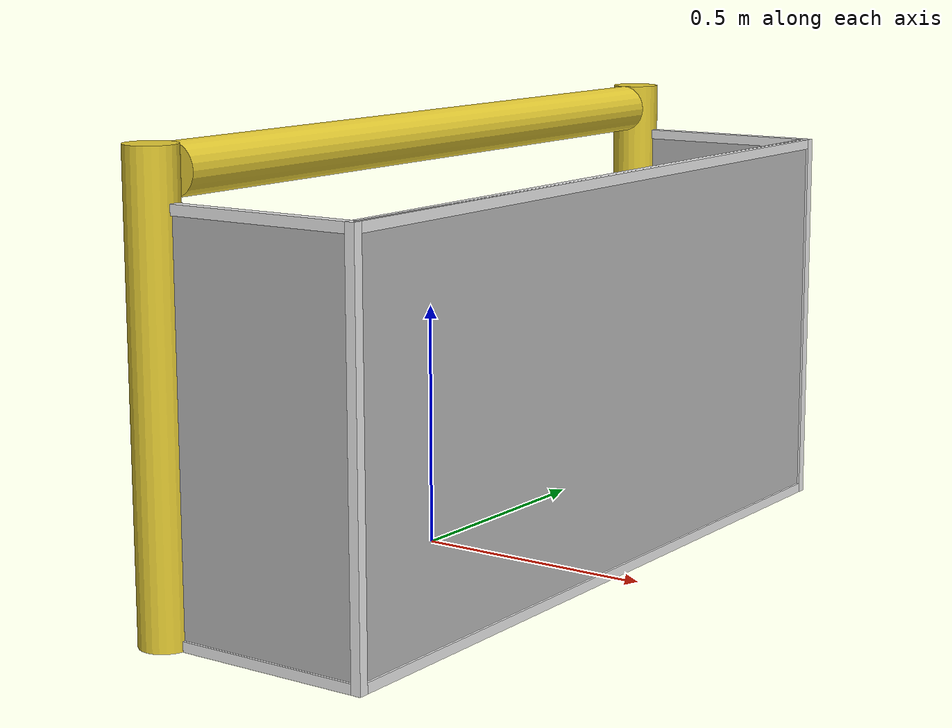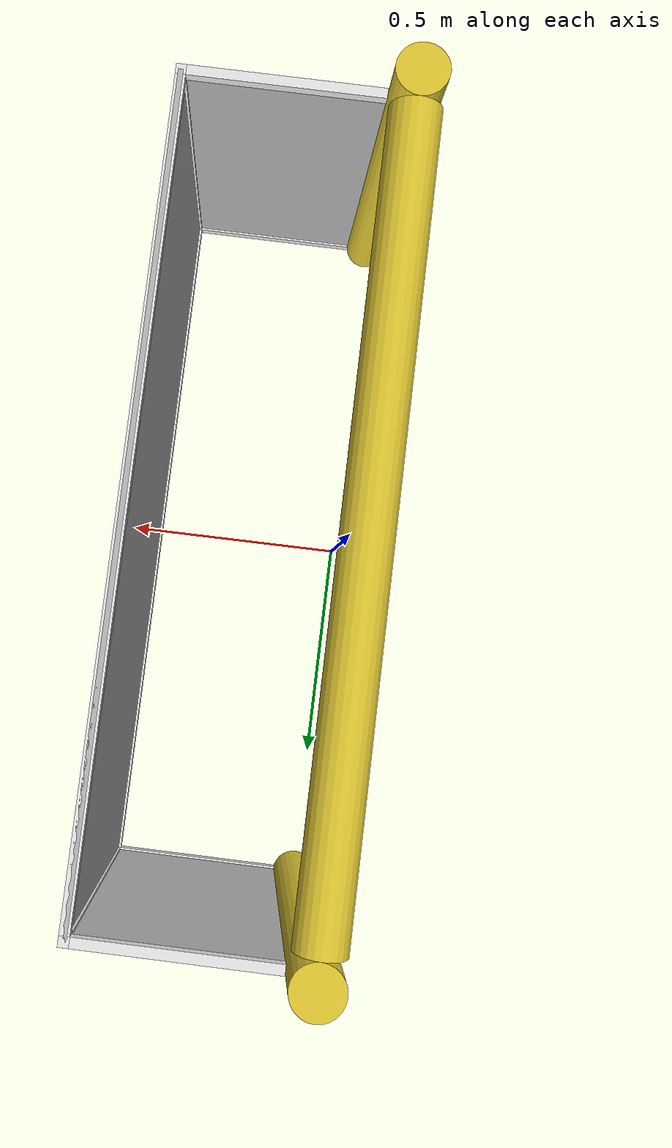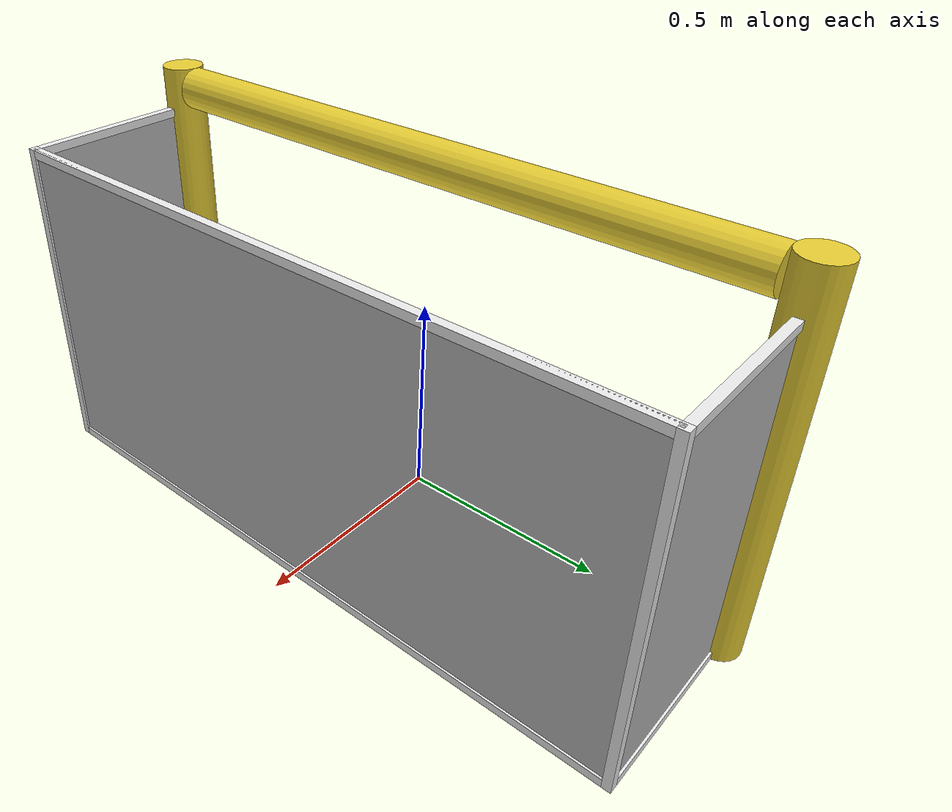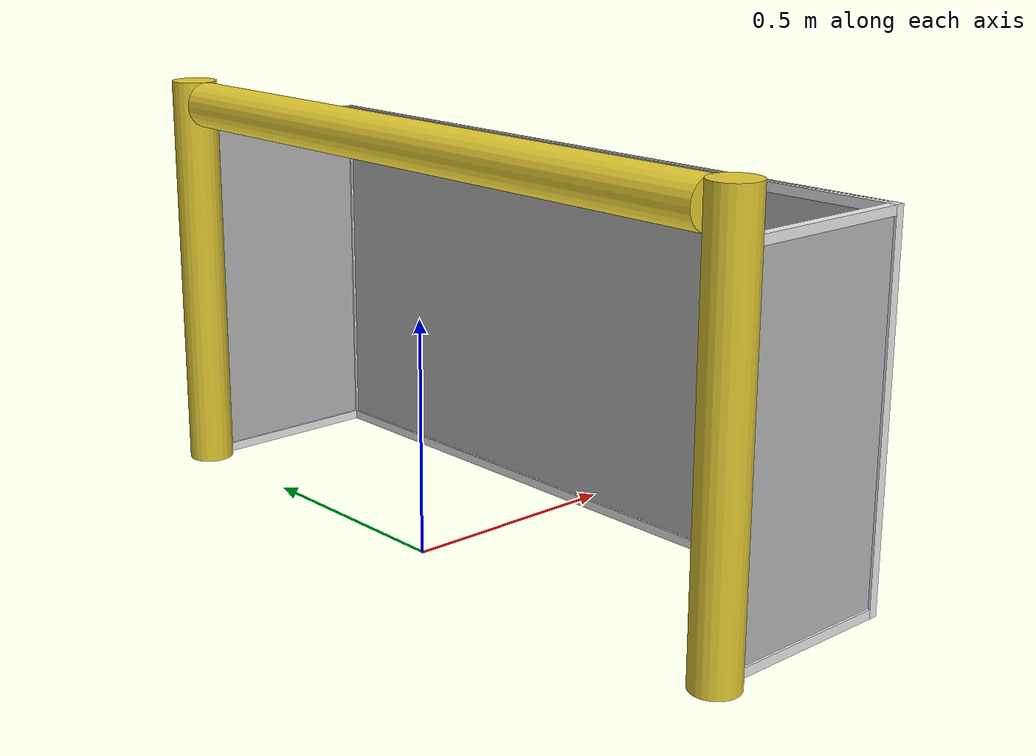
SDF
<?xml version="1.0" ?>
<sdf version="1.4">
  <model name="RoboCup 2014 SPL Goal">
    <static>true</static>

    <link name="left_post">
      <pose>0 0.8 0.45 0 0 0</pose>
      <collision name="collision">
        <geometry>
          <cylinder>
            <radius>0.05</radius>
            <length>0.9</length>
          </cylinder>
        </geometry>
      </collision>
      <visual name="visual">
        <geometry>
          <cylinder>
            <radius>0.05</radius>
            <length>0.9</length>
          </cylinder>
        </geometry>
        <material>
          <script>
            <uri>file://media/materials/scripts/gazebo.material</uri>
            <name>Gazebo/ZincYellow</name>
          </script>
        </material>
      </visual>
    </link>

    <link name="left_support_horiz_lower">
      <pose>0.24 0.8 0.01 0 0 0</pose>
      <collision name="collision">
        <geometry>
          <box>
            <size>0.38 0.02 0.02</size>
          </box>
        </geometry>
      </collision>
      <visual name="visual">
        <geometry>
          <box>
            <size>0.38 0.02 0.02</size>
          </box>
        </geometry>
        <material>
          <script>
            <uri>file://media/materials/scripts/gazebo.material</uri>
            <name>Gazebo/White</name>
          </script>
        </material>
      </visual>
    </link>

    <link name="left_support_horiz_upper">
      <pose>0.24 0.8 0.79 0 0 0</pose>
      <collision name="collision">
        <geometry>
          <box>
            <size>0.38 0.02 0.02</size>
          </box>
        </geometry>
      </collision>
      <visual name="visual">
        <geometry>
          <box>
            <size>0.38 0.02 0.02</size>
          </box>
        </geometry>
        <material>
          <script>
            <uri>file://media/materials/scripts/gazebo.material</uri>
            <name>Gazebo/White</name>
          </script>
        </material>
      </visual>
    </link>

    <link name="left_support_vertical">
      <pose>0.44 0.8 0.4 0 1.5708 0</pose>
      <collision name="collision">
        <geometry>
          <box>
            <size>0.80 0.02 0.02</size>
          </box>
        </geometry>
      </collision>
      <visual name="visual">
        <geometry>
          <box>
            <size>0.80 0.02 0.02</size>
          </box>
        </geometry>
        <material>
          <script>
            <uri>file://media/materials/scripts/gazebo.material</uri>
            <name>Gazebo/White</name>
          </script>
        </material>
      </visual>
    </link>

    <link name="right_support_horiz_lower">
      <pose>0.24 -0.8 0.01 0 0 0</pose>
      <collision name="collision">
        <geometry>
          <box>
            <size>0.38 0.02 0.02</size>
          </box>
        </geometry>
      </collision>
      <visual name="visual">
        <geometry>
          <box>
            <size>0.38 0.02 0.02</size>
          </box>
        </geometry>
        <material>
          <script>
            <uri>file://media/materials/scripts/gazebo.material</uri>
            <name>Gazebo/White</name>
          </script>
        </material>
      </visual>
    </link>

    <link name="right_support_horiz_upper">
      <pose>0.24 -0.8 0.79 0 0 0</pose>
      <collision name="collision">
        <geometry>
          <box>
            <size>0.38 0.02 0.02</size>
          </box>
        </geometry>
      </collision>
      <visual name="visual">
        <geometry>
          <box>
            <size>0.38 0.02 0.02</size>
          </box>
        </geometry>
        <material>
          <script>
            <uri>file://media/materials/scripts/gazebo.material</uri>
            <name>Gazebo/White</name>
          </script>
        </material>
      </visual>
    </link>

    <link name="right_support_vertical">
      <pose>0.44 -0.8 0.4 0 1.5708 0</pose>
      <collision name="collision">
        <geometry>
          <box>
            <size>0.80 0.02 0.02</size>
          </box>
        </geometry>
      </collision>
      <visual name="visual">
        <geometry>
          <box>
            <size>0.80 0.02 0.02</size>
          </box>
        </geometry>
        <material>
          <script>
            <uri>file://media/materials/scripts/gazebo.material</uri>
            <name>Gazebo/White</name>
          </script>
        </material>
      </visual>
    </link>

    <link name="center_support_horiz_lower">
      <pose>0.44 0 0.01 0 1.5708 0</pose>
      <collision name="collision">
        <geometry>
          <box>
            <size>0.02 1.58 0.02</size>
          </box>
        </geometry>
      </collision>
      <visual name="visual">
        <geometry>
          <box>
            <size>0.02 1.58 0.02</size>
          </box>
        </geometry>
        <material>
          <script>
            <uri>file://media/materials/scripts/gazebo.material</uri>
            <name>Gazebo/White</name>
          </script>
        </material>
      </visual>
    </link>

    <link name="center_support_horiz_upper">
      <pose>0.44 0 0.79 0 1.5708 0</pose>
      <collision name="collision">
        <geometry>
          <box>
            <size>0.02 1.58 0.02</size>
          </box>
        </geometry>
      </collision>
      <visual name="visual">
        <geometry>
          <box>
            <size>0.02 1.58 0.02</size>
          </box>
        </geometry>
        <material>
          <script>
            <uri>file://media/materials/scripts/gazebo.material</uri>
            <name>Gazebo/White</name>
          </script>
        </material>
      </visual>
    </link>

    <link name="right_post">
      <pose>0 -0.8 0.45 0 0 0</pose>
      <collision name="collision">
        <geometry>
          <cylinder>
            <radius>0.05</radius>
            <length>0.9</length>
          </cylinder>
        </geometry>
      </collision>
      <visual name="visual">
        <geometry>
          <cylinder>
            <radius>0.05</radius>
            <length>0.9</length>
          </cylinder>
        </geometry>
        <material>
          <script>
            <uri>file://media/materials/scripts/gazebo.material</uri>
            <name>Gazebo/ZincYellow</name>
          </script>
        </material>
      </visual>
    </link>

    <link name="crossbar">
      <pose>0 0 0.85 1.57 1.57 0</pose>
      <collision name="collision">
        <geometry>
          <cylinder>
            <radius>0.05</radius>
            <length>1.5</length>
          </cylinder>
        </geometry>
      </collision>
      <visual name="visual">
        <geometry>
          <cylinder>
            <radius>0.05</radius>
            <length>1.5</length>
          </cylinder>
        </geometry>
        <material>
          <script>
            <uri>file://media/materials/scripts/gazebo.material</uri>
            <name>Gazebo/ZincYellow</name>
          </script>
        </material>
      </visual>
    </link>

    <link name="center_net">
      <pose>0.44 0 0.40 0 0 0</pose>
      <collision name="collision">
        <geometry>
          <box>
            <size>0.01 1.6 0.80</size>
          </box>
        </geometry>
      </collision>
      <visual name="visual">
        <geometry>
          <box>
            <size>0.01 1.6 0.80</size>
          </box>
        </geometry>
        <material>
          <script>
            <uri>model://../model_source/models/robocup09_spl_field/materials/scripts/</uri>
            <uri>model://../model_source/models/robocup09_spl_field/materials/textures/</uri>
            <name>RoboCup/Net</name>
          </script>
        </material>
      </visual>
    </link>

    <link name="left_net">
      <pose>0.24 0.8 0.40 0 0 0</pose>
      <collision name="collision">
        <geometry>
          <box>
            <size>0.38 0.01 0.76</size>
          </box>
        </geometry>
      </collision>
      <visual name="visual">
        <geometry>
          <box>
            <size>0.38 0.01 0.76</size>
          </box>
        </geometry>
        <material>
          <script>
            <uri>model://../model_source/models/robocup09_spl_field/materials/scripts/</uri>
            <uri>model://../model_source/models/robocup09_spl_field/materials/textures/</uri>
            <name>RoboCup/Net</name>
          </script>
        </material>
      </visual>
    </link>

    <link name="right_net">
      <pose>0.24 -0.8 0.40 0 0 0</pose>
      <collision name="collision">
        <geometry>
          <box>
            <size>0.38 0.01 0.76</size>
          </box>
        </geometry>
      </collision>
      <visual name="visual">
        <geometry>
          <box>
            <size>0.38 0.01 0.76</size>
          </box>
        </geometry>
        <material>
          <script>
            <uri>model://../model_source/models/robocup09_spl_field/materials/scripts/</uri>
            <uri>model://../model_source/models/robocup09_spl_field/materials/textures/</uri>
            <name>RoboCup/Net</name>
          </script>
        </material>
      </visual>
    </link>

  </model>
</sdf>
